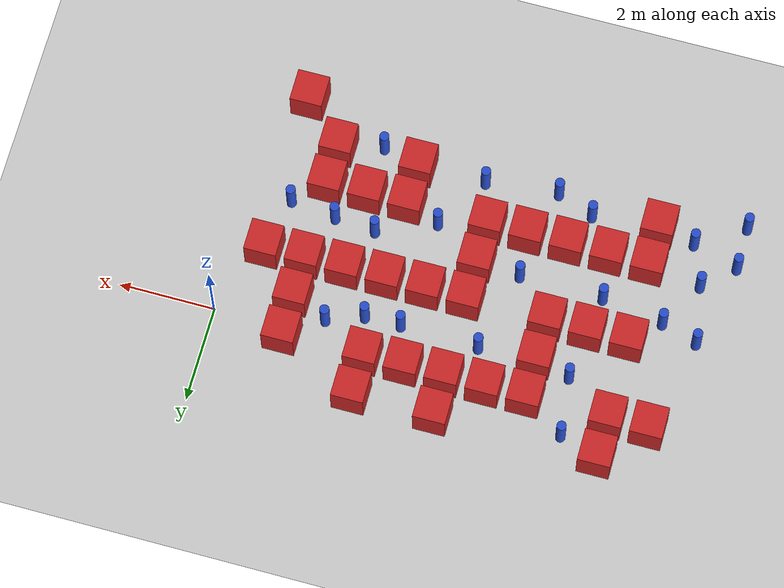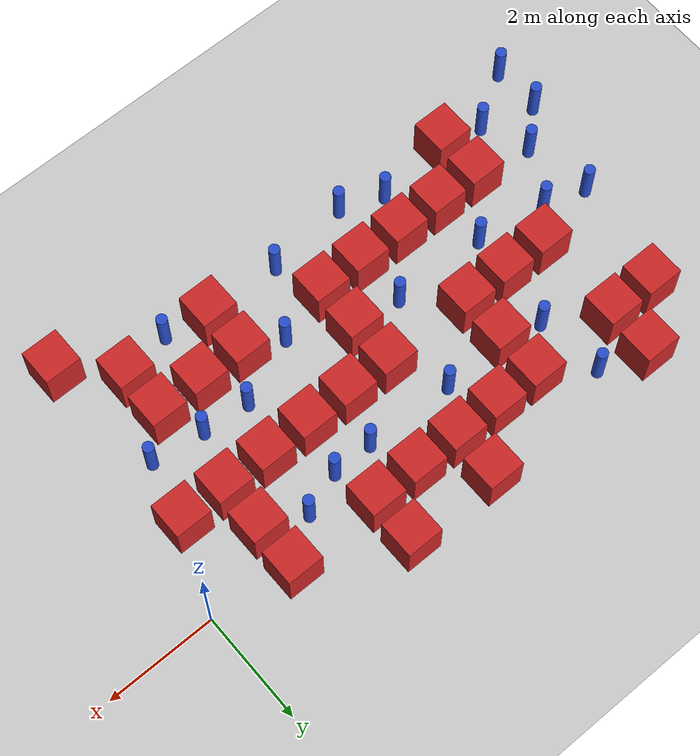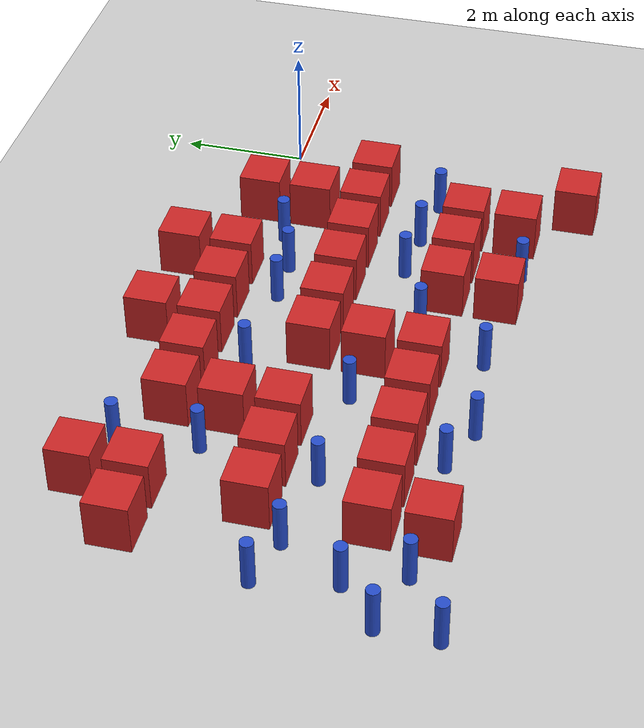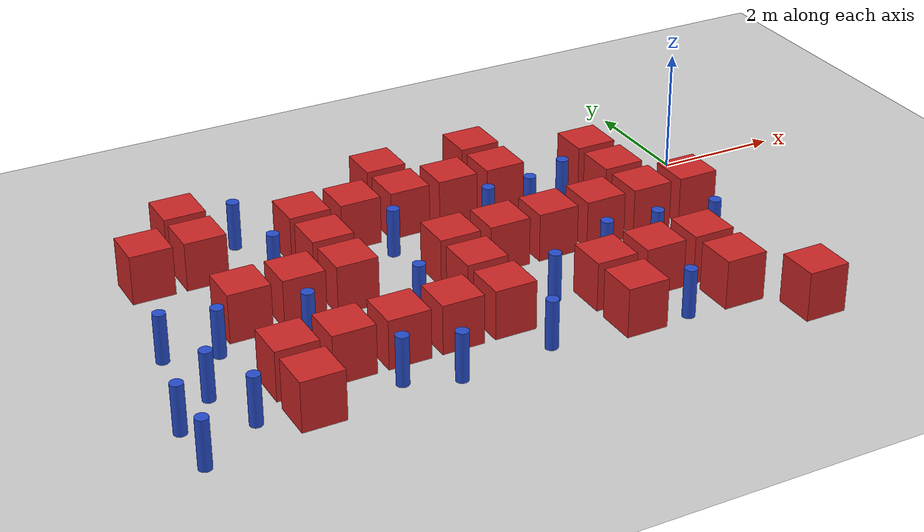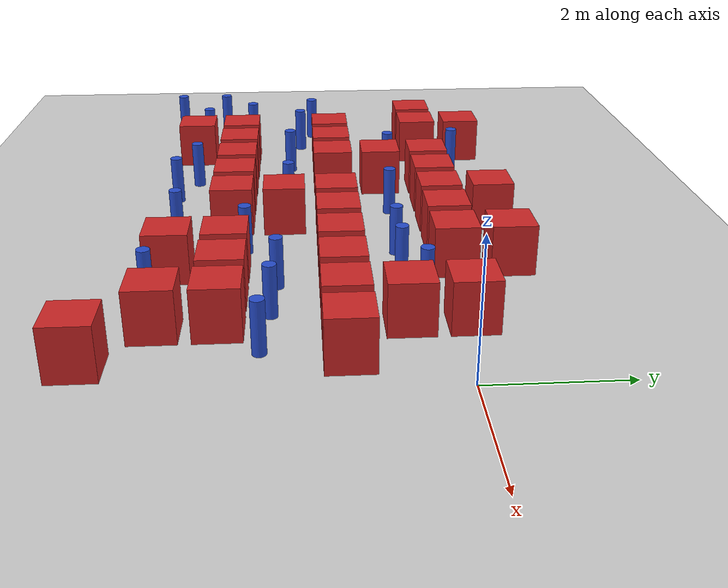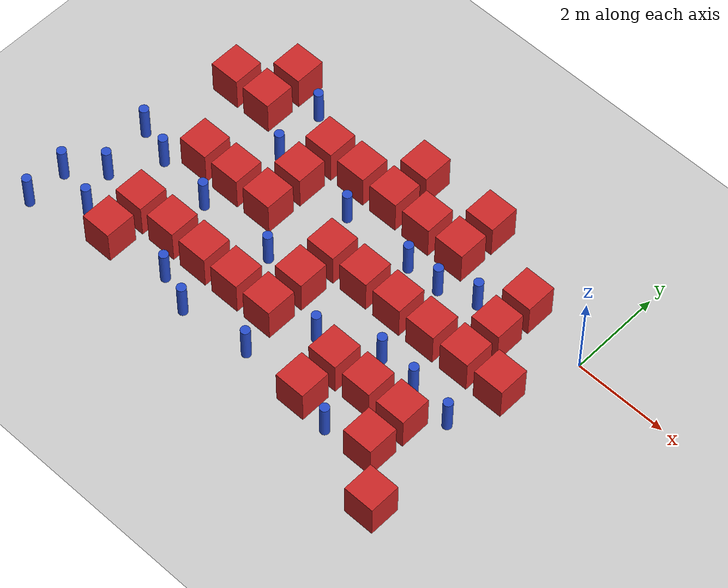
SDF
<sdf version="1.6">
 <world name="default">
  <model name="ground_plane">
   <static>1</static>
   <link name="link">
    <collision name="collision">
     <geometry><plane><normal>0 0 1</normal><size>100 100</size></plane></geometry>
     <surface><friction><ode><mu>100</mu><mu2>50</mu2></ode></friction></surface>
    </collision>
    <visual name="visual">
     <cast_shadows>0</cast_shadows>
     <geometry><plane><normal>0 0 1</normal><size>100 100</size></plane></geometry>
     <material>
      <script><uri>file://media/materials/scripts/gazebo.material</uri><name>Gazebo/Grey</name></script>
     </material>
    </visual>
   </link>
  </model>
  <model name="box_obstacle1">
   <static>0</static>
   <link name="link">
    <pose>0 0 0.1 0 -0 0</pose>
    <inertial>
     <mass>100</mass>
     <inertia>
      <ixx>0.166667</ixx>
      <ixy>0</ixy>
      <ixz>0</ixz>
      <iyy>0.166667</iyy>
      <iyz>0</iyz>
      <izz>0.166667</izz>
     </inertia>
    </inertial>
    <collision name="collision"><geometry><box><size>0.675 0.675 0.8</size></box></geometry></collision>
    <visual name="visual">
     <geometry><box><size>0.675 0.675 0.8</size></box></geometry>
     <material>
      <script><name>Gazebo/Red</name><uri>file://media/materials/scripts/gazebo.material</uri></script>
     </material>
    </visual>
   </link>
   <pose>-9.15097 0.19865 0.299996 4e-06 -0 0.001125</pose>
  </model>
  <model name="box_obstacle6">
   <static>0</static>
   <link name="link">
    <pose>0 0 0.1 0 -0 0</pose>
    <inertial>
     <mass>100</mass>
     <inertia>
      <ixx>0.166667</ixx>
      <ixy>0</ixy>
      <ixz>0</ixz>
      <iyy>0.166667</iyy>
      <iyz>0</iyz>
      <izz>0.166667</izz>
     </inertia>
    </inertial>
    <collision name="collision"><geometry><box><size>0.675 0.675 0.8</size></box></geometry></collision>
    <visual name="visual">
     <geometry><box><size>0.675 0.675 0.8</size></box></geometry>
     <material>
      <script><name>Gazebo/Red</name><uri>file://media/materials/scripts/gazebo.material</uri></script>
     </material>
    </visual>
   </link>
   <pose>-8.30097 -4.05135 0.299996 4e-06 -0 0.001125</pose>
  </model>
  <model name="box_obstacle7">
   <static>0</static>
   <link name="link">
    <pose>0 0 0.1 0 -0 0</pose>
    <inertial>
     <mass>100</mass>
     <inertia>
      <ixx>0.166667</ixx>
      <ixy>0</ixy>
      <ixz>0</ixz>
      <iyy>0.166667</iyy>
      <iyz>0</iyz>
      <izz>0.166667</izz>
     </inertia>
    </inertial>
    <collision name="collision"><geometry><box><size>0.675 0.675 0.8</size></box></geometry></collision>
    <visual name="visual">
     <geometry><box><size>0.675 0.675 0.8</size></box></geometry>
     <material>
      <script><name>Gazebo/Red</name><uri>file://media/materials/scripts/gazebo.material</uri></script>
     </material>
    </visual>
   </link>
   <pose>-8.30097 -3.20135 0.299996 4e-06 -0 0.001125</pose>
  </model>
  <model name="box_obstacle8">
   <static>0</static>
   <link name="link">
    <pose>0 0 0.1 0 -0 0</pose>
    <inertial>
     <mass>100</mass>
     <inertia>
      <ixx>0.166667</ixx>
      <ixy>0</ixy>
      <ixz>0</ixz>
      <iyy>0.166667</iyy>
      <iyz>0</iyz>
      <izz>0.166667</izz>
     </inertia>
    </inertial>
    <collision name="collision"><geometry><box><size>0.675 0.675 0.8</size></box></geometry></collision>
    <visual name="visual">
     <geometry><box><size>0.675 0.675 0.8</size></box></geometry>
     <material>
      <script><name>Gazebo/Red</name><uri>file://media/materials/scripts/gazebo.material</uri></script>
     </material>
    </visual>
   </link>
   <pose>-8.30097 -1.50135 0.299996 4e-06 -0 0.001125</pose>
  </model>
  <model name="box_obstacle9">
   <static>0</static>
   <link name="link">
    <pose>0 0 0.1 0 -0 0</pose>
    <inertial>
     <mass>100</mass>
     <inertia>
      <ixx>0.166667</ixx>
      <ixy>0</ixy>
      <ixz>0</ixz>
      <iyy>0.166667</iyy>
      <iyz>0</iyz>
      <izz>0.166667</izz>
     </inertia>
    </inertial>
    <collision name="collision"><geometry><box><size>0.675 0.675 0.8</size></box></geometry></collision>
    <visual name="visual">
     <geometry><box><size>0.675 0.675 0.8</size></box></geometry>
     <material>
      <script><name>Gazebo/Red</name><uri>file://media/materials/scripts/gazebo.material</uri></script>
     </material>
    </visual>
   </link>
   <pose>-8.30097 0.19865 0.299996 4e-06 -0 0.001125</pose>
  </model>
  <model name="box_obstacle10">
   <static>0</static>
   <link name="link">
    <pose>0 0 0.1 0 -0 0</pose>
    <inertial>
     <mass>100</mass>
     <inertia>
      <ixx>0.166667</ixx>
      <ixy>0</ixy>
      <ixz>0</ixz>
      <iyy>0.166667</iyy>
      <iyz>0</iyz>
      <izz>0.166667</izz>
     </inertia>
    </inertial>
    <collision name="collision"><geometry><box><size>0.675 0.675 0.8</size></box></geometry></collision>
    <visual name="visual">
     <geometry><box><size>0.675 0.675 0.8</size></box></geometry>
     <material>
      <script><name>Gazebo/Red</name><uri>file://media/materials/scripts/gazebo.material</uri></script>
     </material>
    </visual>
   </link>
   <pose>-8.30097 1.04865 0.299996 4e-06 -0 0.001125</pose>
  </model>
  <model name="box_obstacle20">
   <static>0</static>
   <link name="link">
    <pose>0 0 0.1 0 -0 0</pose>
    <inertial>
     <mass>100</mass>
     <inertia>
      <ixx>0.166667</ixx>
      <ixy>0</ixy>
      <ixz>0</ixz>
      <iyy>0.166667</iyy>
      <iyz>0</iyz>
      <izz>0.166667</izz>
     </inertia>
    </inertial>
    <collision name="collision"><geometry><box><size>0.675 0.675 0.8</size></box></geometry></collision>
    <visual name="visual">
     <geometry><box><size>0.675 0.675 0.8</size></box></geometry>
     <material>
      <script><name>Gazebo/Red</name><uri>file://media/materials/scripts/gazebo.material</uri></script>
     </material>
    </visual>
   </link>
   <pose>-7.45097 -3.20135 0.299996 4e-06 -0 0.001125</pose>
  </model>
  <model name="box_obstacle21">
   <static>0</static>
   <link name="link">
    <pose>0 0 0.1 0 -0 0</pose>
    <inertial>
     <mass>100</mass>
     <inertia>
      <ixx>0.166667</ixx>
      <ixy>0</ixy>
      <ixz>0</ixz>
      <iyy>0.166667</iyy>
      <iyz>0</iyz>
      <izz>0.166667</izz>
     </inertia>
    </inertial>
    <collision name="collision"><geometry><box><size>0.675 0.675 0.8</size></box></geometry></collision>
    <visual name="visual">
     <geometry><box><size>0.675 0.675 0.8</size></box></geometry>
     <material>
      <script><name>Gazebo/Red</name><uri>file://media/materials/scripts/gazebo.material</uri></script>
     </material>
    </visual>
   </link>
   <pose>-7.45097 -1.50135 0.299996 4e-06 -0 0.001125</pose>
  </model>
  <model name="box_obstacle29">
   <static>0</static>
   <link name="link">
    <pose>0 0 0.1 0 -0 0</pose>
    <inertial>
     <mass>100</mass>
     <inertia>
      <ixx>0.166667</ixx>
      <ixy>0</ixy>
      <ixz>0</ixz>
      <iyy>0.166667</iyy>
      <iyz>0</iyz>
      <izz>0.166667</izz>
     </inertia>
    </inertial>
    <collision name="collision"><geometry><box><size>0.675 0.675 0.8</size></box></geometry></collision>
    <visual name="visual">
     <geometry><box><size>0.675 0.675 0.8</size></box></geometry>
     <material>
      <script><name>Gazebo/Red</name><uri>file://media/materials/scripts/gazebo.material</uri></script>
     </material>
    </visual>
   </link>
   <pose>-6.60097 -3.20135 0.299996 4e-06 -0 0.001125</pose>
  </model>
  <model name="box_obstacle30">
   <static>0</static>
   <link name="link">
    <pose>0 0 0.1 0 -0 0</pose>
    <inertial>
     <mass>100</mass>
     <inertia>
      <ixx>0.166667</ixx>
      <ixy>0</ixy>
      <ixz>0</ixz>
      <iyy>0.166667</iyy>
      <iyz>0</iyz>
      <izz>0.166667</izz>
     </inertia>
    </inertial>
    <collision name="collision"><geometry><box><size>0.675 0.675 0.8</size></box></geometry></collision>
    <visual name="visual">
     <geometry><box><size>0.675 0.675 0.8</size></box></geometry>
     <material>
      <script><name>Gazebo/Red</name><uri>file://media/materials/scripts/gazebo.material</uri></script>
     </material>
    </visual>
   </link>
   <pose>-6.60097 -1.50135 0.299996 4e-06 -0 0.001125</pose>
  </model>
  <model name="box_obstacle31">
   <static>0</static>
   <link name="link">
    <pose>0 0 0.1 0 -0 0</pose>
    <inertial>
     <mass>100</mass>
     <inertia>
      <ixx>0.166667</ixx>
      <ixy>0</ixy>
      <ixz>0</ixz>
      <iyy>0.166667</iyy>
      <iyz>0</iyz>
      <izz>0.166667</izz>
     </inertia>
    </inertial>
    <collision name="collision"><geometry><box><size>0.675 0.675 0.8</size></box></geometry></collision>
    <visual name="visual">
     <geometry><box><size>0.675 0.675 0.8</size></box></geometry>
     <material>
      <script><name>Gazebo/Red</name><uri>file://media/materials/scripts/gazebo.material</uri></script>
     </material>
    </visual>
   </link>
   <pose>-6.60097 -0.65135 0.299996 4e-06 -0 0.001125</pose>
  </model>
  <model name="box_obstacle32">
   <static>0</static>
   <link name="link">
    <pose>0 0 0.1 0 -0 0</pose>
    <inertial>
     <mass>100</mass>
     <inertia>
      <ixx>0.166667</ixx>
      <ixy>0</ixy>
      <ixz>0</ixz>
      <iyy>0.166667</iyy>
      <iyz>0</iyz>
      <izz>0.166667</izz>
     </inertia>
    </inertial>
    <collision name="collision"><geometry><box><size>0.675 0.675 0.8</size></box></geometry></collision>
    <visual name="visual">
     <geometry><box><size>0.675 0.675 0.8</size></box></geometry>
     <material>
      <script><name>Gazebo/Red</name><uri>file://media/materials/scripts/gazebo.material</uri></script>
     </material>
    </visual>
   </link>
   <pose>-6.60097 0.19865 0.299996 4e-06 -0 0.001125</pose>
  </model>
  <model name="box_obstacle43">
   <static>0</static>
   <link name="link">
    <pose>0 0 0.1 0 -0 0</pose>
    <inertial>
     <mass>100</mass>
     <inertia>
      <ixx>0.166667</ixx>
      <ixy>0</ixy>
      <ixz>0</ixz>
      <iyy>0.166667</iyy>
      <iyz>0</iyz>
      <izz>0.166667</izz>
     </inertia>
    </inertial>
    <collision name="collision"><geometry><box><size>0.675 0.675 0.8</size></box></geometry></collision>
    <visual name="visual">
     <geometry><box><size>0.675 0.675 0.8</size></box></geometry>
     <material>
      <script><name>Gazebo/Red</name><uri>file://media/materials/scripts/gazebo.material</uri></script>
     </material>
    </visual>
   </link>
   <pose>-5.75097 -3.20135 0.299996 4e-06 -0 0.001125</pose>
  </model>
  <model name="box_obstacle44">
   <static>0</static>
   <link name="link">
    <pose>0 0 0.1 0 -0 0</pose>
    <inertial>
     <mass>100</mass>
     <inertia>
      <ixx>0.166667</ixx>
      <ixy>0</ixy>
      <ixz>0</ixz>
      <iyy>0.166667</iyy>
      <iyz>0</iyz>
      <izz>0.166667</izz>
     </inertia>
    </inertial>
    <collision name="collision"><geometry><box><size>0.675 0.675 0.8</size></box></geometry></collision>
    <visual name="visual">
     <geometry><box><size>0.675 0.675 0.8</size></box></geometry>
     <material>
      <script><name>Gazebo/Red</name><uri>file://media/materials/scripts/gazebo.material</uri></script>
     </material>
    </visual>
   </link>
   <pose>-5.75097 0.19865 0.299996 4e-06 -0 0.001125</pose>
  </model>
  <model name="box_obstacle49">
   <static>0</static>
   <link name="link">
    <pose>0 0 0.1 0 -0 0</pose>
    <inertial>
     <mass>100</mass>
     <inertia>
      <ixx>0.166667</ixx>
      <ixy>0</ixy>
      <ixz>0</ixz>
      <iyy>0.166667</iyy>
      <iyz>0</iyz>
      <izz>0.166667</izz>
     </inertia>
    </inertial>
    <collision name="collision"><geometry><box><size>0.675 0.675 0.8</size></box></geometry></collision>
    <visual name="visual">
     <geometry><box><size>0.675 0.675 0.8</size></box></geometry>
     <material>
      <script><name>Gazebo/Red</name><uri>file://media/materials/scripts/gazebo.material</uri></script>
     </material>
    </visual>
   </link>
   <pose>-4.90097 -3.20135 0.299996 4e-06 -0 0.001125</pose>
  </model>
  <model name="box_obstacle50">
   <static>0</static>
   <link name="link">
    <pose>0 0 0.1 0 -0 0</pose>
    <inertial>
     <mass>100</mass>
     <inertia>
      <ixx>0.166667</ixx>
      <ixy>0</ixy>
      <ixz>0</ixz>
      <iyy>0.166667</iyy>
      <iyz>0</iyz>
      <izz>0.166667</izz>
     </inertia>
    </inertial>
    <collision name="collision"><geometry><box><size>0.675 0.675 0.8</size></box></geometry></collision>
    <visual name="visual">
     <geometry><box><size>0.675 0.675 0.8</size></box></geometry>
     <material>
      <script><name>Gazebo/Red</name><uri>file://media/materials/scripts/gazebo.material</uri></script>
     </material>
    </visual>
   </link>
   <pose>-4.90097 -2.35135 0.299996 4e-06 -0 0.001125</pose>
  </model>
  <model name="box_obstacle51">
   <static>0</static>
   <link name="link">
    <pose>0 0 0.1 0 -0 0</pose>
    <inertial>
     <mass>100</mass>
     <inertia>
      <ixx>0.166667</ixx>
      <ixy>0</ixy>
      <ixz>0</ixz>
      <iyy>0.166667</iyy>
      <iyz>0</iyz>
      <izz>0.166667</izz>
     </inertia>
    </inertial>
    <collision name="collision"><geometry><box><size>0.675 0.675 0.8</size></box></geometry></collision>
    <visual name="visual">
     <geometry><box><size>0.675 0.675 0.8</size></box></geometry>
     <material>
      <script><name>Gazebo/Red</name><uri>file://media/materials/scripts/gazebo.material</uri></script>
     </material>
    </visual>
   </link>
   <pose>-4.90097 -1.50135 0.299996 4e-06 -0 0.001125</pose>
  </model>
  <model name="box_obstacle52">
   <static>0</static>
   <link name="link">
    <pose>0 0 0.1 0 -0 0</pose>
    <inertial>
     <mass>100</mass>
     <inertia>
      <ixx>0.166667</ixx>
      <ixy>0</ixy>
      <ixz>0</ixz>
      <iyy>0.166667</iyy>
      <iyz>0</iyz>
      <izz>0.166667</izz>
     </inertia>
    </inertial>
    <collision name="collision"><geometry><box><size>0.675 0.675 0.8</size></box></geometry></collision>
    <visual name="visual">
     <geometry><box><size>0.675 0.675 0.8</size></box></geometry>
     <material>
      <script><name>Gazebo/Red</name><uri>file://media/materials/scripts/gazebo.material</uri></script>
     </material>
    </visual>
   </link>
   <pose>-4.90097 0.19865 0.299996 4e-06 -0 0.001125</pose>
  </model>
  <model name="box_obstacle53">
   <static>0</static>
   <link name="link">
    <pose>0 0 0.1 0 -0 0</pose>
    <inertial>
     <mass>100</mass>
     <inertia>
      <ixx>0.166667</ixx>
      <ixy>0</ixy>
      <ixz>0</ixz>
      <iyy>0.166667</iyy>
      <iyz>0</iyz>
      <izz>0.166667</izz>
     </inertia>
    </inertial>
    <collision name="collision"><geometry><box><size>0.675 0.675 0.8</size></box></geometry></collision>
    <visual name="visual">
     <geometry><box><size>0.675 0.675 0.8</size></box></geometry>
     <material>
      <script><name>Gazebo/Red</name><uri>file://media/materials/scripts/gazebo.material</uri></script>
     </material>
    </visual>
   </link>
   <pose>-4.90097 1.04865 0.299996 4e-06 -0 0.001125</pose>
  </model>
  <model name="box_obstacle65">
   <static>0</static>
   <link name="link">
    <pose>0 0 0.1 0 -0 0</pose>
    <inertial>
     <mass>100</mass>
     <inertia>
      <ixx>0.166667</ixx>
      <ixy>0</ixy>
      <ixz>0</ixz>
      <iyy>0.166667</iyy>
      <iyz>0</iyz>
      <izz>0.166667</izz>
     </inertia>
    </inertial>
    <collision name="collision"><geometry><box><size>0.675 0.675 0.8</size></box></geometry></collision>
    <visual name="visual">
     <geometry><box><size>0.675 0.675 0.8</size></box></geometry>
     <material>
      <script><name>Gazebo/Red</name><uri>file://media/materials/scripts/gazebo.material</uri></script>
     </material>
    </visual>
   </link>
   <pose>-4.05097 -1.50135 0.299996 4e-06 -0 0.001125</pose>
  </model>
  <model name="box_obstacle66">
   <static>0</static>
   <link name="link">
    <pose>0 0 0.1 0 -0 0</pose>
    <inertial>
     <mass>100</mass>
     <inertia>
      <ixx>0.166667</ixx>
      <ixy>0</ixy>
      <ixz>0</ixz>
      <iyy>0.166667</iyy>
      <iyz>0</iyz>
      <izz>0.166667</izz>
     </inertia>
    </inertial>
    <collision name="collision"><geometry><box><size>0.675 0.675 0.8</size></box></geometry></collision>
    <visual name="visual">
     <geometry><box><size>0.675 0.675 0.8</size></box></geometry>
     <material>
      <script><name>Gazebo/Red</name><uri>file://media/materials/scripts/gazebo.material</uri></script>
     </material>
    </visual>
   </link>
   <pose>-4.05097 0.19865 0.299996 4e-06 -0 0.001125</pose>
  </model>
  <model name="box_obstacle73">
   <static>0</static>
   <link name="link">
    <pose>0 0 0.1 0 -0 0</pose>
    <inertial>
     <mass>100</mass>
     <inertia>
      <ixx>0.166667</ixx>
      <ixy>0</ixy>
      <ixz>0</ixz>
      <iyy>0.166667</iyy>
      <iyz>0</iyz>
      <izz>0.166667</izz>
     </inertia>
    </inertial>
    <collision name="collision"><geometry><box><size>0.675 0.675 0.8</size></box></geometry></collision>
    <visual name="visual">
     <geometry><box><size>0.675 0.675 0.8</size></box></geometry>
     <material>
      <script><name>Gazebo/Red</name><uri>file://media/materials/scripts/gazebo.material</uri></script>
     </material>
    </visual>
   </link>
   <pose>-3.20097 -4.05135 0.299996 4e-06 -0 0.001125</pose>
  </model>
  <model name="box_obstacle74">
   <static>0</static>
   <link name="link">
    <pose>0 0 0.1 0 -0 0</pose>
    <inertial>
     <mass>100</mass>
     <inertia>
      <ixx>0.166667</ixx>
      <ixy>0</ixy>
      <ixz>0</ixz>
      <iyy>0.166667</iyy>
      <iyz>0</iyz>
      <izz>0.166667</izz>
     </inertia>
    </inertial>
    <collision name="collision"><geometry><box><size>0.675 0.675 0.8</size></box></geometry></collision>
    <visual name="visual">
     <geometry><box><size>0.675 0.675 0.8</size></box></geometry>
     <material>
      <script><name>Gazebo/Red</name><uri>file://media/materials/scripts/gazebo.material</uri></script>
     </material>
    </visual>
   </link>
   <pose>-3.20097 -3.20135 0.299996 4e-06 -0 0.001125</pose>
  </model>
  <model name="box_obstacle75">
   <static>0</static>
   <link name="link">
    <pose>0 0 0.1 0 -0 0</pose>
    <inertial>
     <mass>100</mass>
     <inertia>
      <ixx>0.166667</ixx>
      <ixy>0</ixy>
      <ixz>0</ixz>
      <iyy>0.166667</iyy>
      <iyz>0</iyz>
      <izz>0.166667</izz>
     </inertia>
    </inertial>
    <collision name="collision"><geometry><box><size>0.675 0.675 0.8</size></box></geometry></collision>
    <visual name="visual">
     <geometry><box><size>0.675 0.675 0.8</size></box></geometry>
     <material>
      <script><name>Gazebo/Red</name><uri>file://media/materials/scripts/gazebo.material</uri></script>
     </material>
    </visual>
   </link>
   <pose>-3.20097 -1.50135 0.299996 4e-06 -0 0.001125</pose>
  </model>
  <model name="box_obstacle76">
   <static>0</static>
   <link name="link">
    <pose>0 0 0.1 0 -0 0</pose>
    <inertial>
     <mass>100</mass>
     <inertia>
      <ixx>0.166667</ixx>
      <ixy>0</ixy>
      <ixz>0</ixz>
      <iyy>0.166667</iyy>
      <iyz>0</iyz>
      <izz>0.166667</izz>
     </inertia>
    </inertial>
    <collision name="collision"><geometry><box><size>0.675 0.675 0.8</size></box></geometry></collision>
    <visual name="visual">
     <geometry><box><size>0.675 0.675 0.8</size></box></geometry>
     <material>
      <script><name>Gazebo/Red</name><uri>file://media/materials/scripts/gazebo.material</uri></script>
     </material>
    </visual>
   </link>
   <pose>-3.20097 0.19865 0.299996 4e-06 -0 0.001125</pose>
  </model>
  <model name="box_obstacle77">
   <static>0</static>
   <link name="link">
    <pose>0 0 0.1 0 -0 0</pose>
    <inertial>
     <mass>100</mass>
     <inertia>
      <ixx>0.166667</ixx>
      <ixy>0</ixy>
      <ixz>0</ixz>
      <iyy>0.166667</iyy>
      <iyz>0</iyz>
      <izz>0.166667</izz>
     </inertia>
    </inertial>
    <collision name="collision"><geometry><box><size>0.675 0.675 0.8</size></box></geometry></collision>
    <visual name="visual">
     <geometry><box><size>0.675 0.675 0.8</size></box></geometry>
     <material>
      <script><name>Gazebo/Red</name><uri>file://media/materials/scripts/gazebo.material</uri></script>
     </material>
    </visual>
   </link>
   <pose>-3.20097 1.04865 0.299996 4e-06 -0 0.001125</pose>
  </model>
  <model name="box_obstacle86">
   <static>0</static>
   <link name="link">
    <pose>0 0 0.1 0 -0 0</pose>
    <inertial>
     <mass>100</mass>
     <inertia>
      <ixx>0.166667</ixx>
      <ixy>0</ixy>
      <ixz>0</ixz>
      <iyy>0.166667</iyy>
      <iyz>0</iyz>
      <izz>0.166667</izz>
     </inertia>
    </inertial>
    <collision name="collision"><geometry><box><size>0.675 0.675 0.8</size></box></geometry></collision>
    <visual name="visual">
     <geometry><box><size>0.675 0.675 0.8</size></box></geometry>
     <material>
      <script><name>Gazebo/Red</name><uri>file://media/materials/scripts/gazebo.material</uri></script>
     </material>
    </visual>
   </link>
   <pose>-2.35097 -3.20135 0.299996 4e-06 -0 0.001125</pose>
  </model>
  <model name="box_obstacle87">
   <static>0</static>
   <link name="link">
    <pose>0 0 0.1 0 -0 0</pose>
    <inertial>
     <mass>100</mass>
     <inertia>
      <ixx>0.166667</ixx>
      <ixy>0</ixy>
      <ixz>0</ixz>
      <iyy>0.166667</iyy>
      <iyz>0</iyz>
      <izz>0.166667</izz>
     </inertia>
    </inertial>
    <collision name="collision"><geometry><box><size>0.675 0.675 0.8</size></box></geometry></collision>
    <visual name="visual">
     <geometry><box><size>0.675 0.675 0.8</size></box></geometry>
     <material>
      <script><name>Gazebo/Red</name><uri>file://media/materials/scripts/gazebo.material</uri></script>
     </material>
    </visual>
   </link>
   <pose>-2.35097 -1.50135 0.299996 4e-06 -0 0.001125</pose>
  </model>
  <model name="box_obstacle94">
   <static>0</static>
   <link name="link">
    <pose>0 0 0.1 0 -0 0</pose>
    <inertial>
     <mass>100</mass>
     <inertia>
      <ixx>0.166667</ixx>
      <ixy>0</ixy>
      <ixz>0</ixz>
      <iyy>0.166667</iyy>
      <iyz>0</iyz>
      <izz>0.166667</izz>
     </inertia>
    </inertial>
    <collision name="collision"><geometry><box><size>0.675 0.675 0.8</size></box></geometry></collision>
    <visual name="visual">
     <geometry><box><size>0.675 0.675 0.8</size></box></geometry>
     <material>
      <script><name>Gazebo/Red</name><uri>file://media/materials/scripts/gazebo.material</uri></script>
     </material>
    </visual>
   </link>
   <pose>-1.50097 -4.05135 0.299996 4e-06 -0 0.001125</pose>
  </model>
  <model name="box_obstacle95">
   <static>0</static>
   <link name="link">
    <pose>0 0 0.1 0 -0 0</pose>
    <inertial>
     <mass>100</mass>
     <inertia>
      <ixx>0.166667</ixx>
      <ixy>0</ixy>
      <ixz>0</ixz>
      <iyy>0.166667</iyy>
      <iyz>0</iyz>
      <izz>0.166667</izz>
     </inertia>
    </inertial>
    <collision name="collision"><geometry><box><size>0.675 0.675 0.8</size></box></geometry></collision>
    <visual name="visual">
     <geometry><box><size>0.675 0.675 0.8</size></box></geometry>
     <material>
      <script><name>Gazebo/Red</name><uri>file://media/materials/scripts/gazebo.material</uri></script>
     </material>
    </visual>
   </link>
   <pose>-1.50097 -3.20135 0.299996 4e-06 -0 0.001125</pose>
  </model>
  <model name="box_obstacle96">
   <static>0</static>
   <link name="link">
    <pose>0 0 0.1 0 -0 0</pose>
    <inertial>
     <mass>100</mass>
     <inertia>
      <ixx>0.166667</ixx>
      <ixy>0</ixy>
      <ixz>0</ixz>
      <iyy>0.166667</iyy>
      <iyz>0</iyz>
      <izz>0.166667</izz>
     </inertia>
    </inertial>
    <collision name="collision"><geometry><box><size>0.675 0.675 0.8</size></box></geometry></collision>
    <visual name="visual">
     <geometry><box><size>0.675 0.675 0.8</size></box></geometry>
     <material>
      <script><name>Gazebo/Red</name><uri>file://media/materials/scripts/gazebo.material</uri></script>
     </material>
    </visual>
   </link>
   <pose>-1.50097 -1.50135 0.299996 4e-06 -0 0.001125</pose>
  </model>
  <model name="box_obstacle97">
   <static>0</static>
   <link name="link">
    <pose>0 0 0.1 0 -0 0</pose>
    <inertial>
     <mass>100</mass>
     <inertia>
      <ixx>0.166667</ixx>
      <ixy>0</ixy>
      <ixz>0</ixz>
      <iyy>0.166667</iyy>
      <iyz>0</iyz>
      <izz>0.166667</izz>
     </inertia>
    </inertial>
    <collision name="collision"><geometry><box><size>0.675 0.675 0.8</size></box></geometry></collision>
    <visual name="visual">
     <geometry><box><size>0.675 0.675 0.8</size></box></geometry>
     <material>
      <script><name>Gazebo/Red</name><uri>file://media/materials/scripts/gazebo.material</uri></script>
     </material>
    </visual>
   </link>
   <pose>-1.50097 -0.65135 0.299996 4e-06 -0 0.001125</pose>
  </model>
  <model name="box_obstacle98">
   <static>0</static>
   <link name="link">
    <pose>0 0 0.1 0 -0 0</pose>
    <inertial>
     <mass>100</mass>
     <inertia>
      <ixx>0.166667</ixx>
      <ixy>0</ixy>
      <ixz>0</ixz>
      <iyy>0.166667</iyy>
      <iyz>0</iyz>
      <izz>0.166667</izz>
     </inertia>
    </inertial>
    <collision name="collision"><geometry><box><size>0.675 0.675 0.8</size></box></geometry></collision>
    <visual name="visual">
     <geometry><box><size>0.675 0.675 0.8</size></box></geometry>
     <material>
      <script><name>Gazebo/Red</name><uri>file://media/materials/scripts/gazebo.material</uri></script>
     </material>
    </visual>
   </link>
   <pose>-1.50097 0.19865 0.299996 4e-06 -0 0.001125</pose>
  </model>
  <model name="box_obstacle107">
   <static>0</static>
   <link name="link">
    <pose>0 0 0.1 0 -0 0</pose>
    <inertial>
     <mass>100</mass>
     <inertia>
      <ixx>0.166667</ixx>
      <ixy>0</ixy>
      <ixz>0</ixz>
      <iyy>0.166667</iyy>
      <iyz>0</iyz>
      <izz>0.166667</izz>
     </inertia>
    </inertial>
    <collision name="collision"><geometry><box><size>0.675 0.675 0.8</size></box></geometry></collision>
    <visual name="visual">
     <geometry><box><size>0.675 0.675 0.8</size></box></geometry>
     <material>
      <script><name>Gazebo/Red</name><uri>file://media/materials/scripts/gazebo.material</uri></script>
     </material>
    </visual>
   </link>
   <pose>-0.65097 -4.90135 0.299996 4e-06 -0 0.001125</pose>
  </model>
  <model name="box_obstacle108">
   <static>0</static>
   <link name="link">
    <pose>0 0 0.1 0 -0 0</pose>
    <inertial>
     <mass>100</mass>
     <inertia>
      <ixx>0.166667</ixx>
      <ixy>0</ixy>
      <ixz>0</ixz>
      <iyy>0.166667</iyy>
      <iyz>0</iyz>
      <izz>0.166667</izz>
     </inertia>
    </inertial>
    <collision name="collision"><geometry><box><size>0.675 0.675 0.8</size></box></geometry></collision>
    <visual name="visual">
     <geometry><box><size>0.675 0.675 0.8</size></box></geometry>
     <material>
      <script><name>Gazebo/Red</name><uri>file://media/materials/scripts/gazebo.material</uri></script>
     </material>
    </visual>
   </link>
   <pose>-0.65097 -1.50135 0.299996 4e-06 -0 0.001125</pose>
  </model>
  <model name="cylinder_obstacle4">
   <static>0</static>
   <link name="link">
    <pose>0 0 1 0 -0 0</pose>
    <inertial>
     <mass>100</mass>
     <inertia>
      <ixx>0.166667</ixx>
      <ixy>0</ixy>
      <ixz>0</ixz>
      <iyy>0.166667</iyy>
      <iyz>0</iyz>
      <izz>0.166667</izz>
     </inertia>
    </inertial>
    <collision name="collision">
     <geometry><cylinder><radius>0.1</radius><length>0.8</length></cylinder></geometry>
    </collision>
    <visual name="visual">
     <geometry><cylinder><radius>0.1</radius><length>0.8</length></cylinder></geometry>
     <material>
      <script><name>Gazebo/Blue</name><uri>file://media/materials/scripts/gazebo.material</uri></script>
     </material>
    </visual>
   </link>
   <pose>-4.62511 -4.08423 -0.6 3e-06 1e-06 0.003884</pose>
  </model>
  <model name="cylinder_obstacle6">
   <static>0</static>
   <link name="link">
    <pose>0 0 1 0 -0 0</pose>
    <inertial>
     <mass>100</mass>
     <inertia>
      <ixx>0.166667</ixx>
      <ixy>0</ixy>
      <ixz>0</ixz>
      <iyy>0.166667</iyy>
      <iyz>0</iyz>
      <izz>0.166667</izz>
     </inertia>
    </inertial>
    <collision name="collision">
     <geometry><cylinder><radius>0.1</radius><length>0.8</length></cylinder></geometry>
    </collision>
    <visual name="visual">
     <geometry><cylinder><radius>0.1</radius><length>0.8</length></cylinder></geometry>
     <material>
      <script><name>Gazebo/Blue</name><uri>file://media/materials/scripts/gazebo.material</uri></script>
     </material>
    </visual>
   </link>
   <pose>-3.77168 -0.618054 -0.6 3e-06 1e-06 0.003884</pose>
  </model>
  <model name="cylinder_obstacle8">
   <static>0</static>
   <link name="link">
    <pose>0 0 1 0 -0 0</pose>
    <inertial>
     <mass>100</mass>
     <inertia>
      <ixx>0.166667</ixx>
      <ixy>0</ixy>
      <ixz>0</ixz>
      <iyy>0.166667</iyy>
      <iyz>0</iyz>
      <izz>0.166667</izz>
     </inertia>
    </inertial>
    <collision name="collision">
     <geometry><cylinder><radius>0.1</radius><length>0.8</length></cylinder></geometry>
    </collision>
    <visual name="visual">
     <geometry><cylinder><radius>0.1</radius><length>0.8</length></cylinder></geometry>
     <material>
      <script><name>Gazebo/Blue</name><uri>file://media/materials/scripts/gazebo.material</uri></script>
     </material>
    </visual>
   </link>
   <pose>-2.41603 -4.27344 -0.6 3e-06 1e-06 0.003884</pose>
  </model>
  <model name="cylinder_obstacle15">
   <static>0</static>
   <link name="link">
    <pose>0 0 1 0 -0 0</pose>
    <inertial>
     <mass>100</mass>
     <inertia>
      <ixx>0.166667</ixx>
      <ixy>0</ixy>
      <ixz>0</ixz>
      <iyy>0.166667</iyy>
      <iyz>0</iyz>
      <izz>0.166667</izz>
     </inertia>
    </inertial>
    <collision name="collision">
     <geometry><cylinder><radius>0.1</radius><length>0.8</length></cylinder></geometry>
    </collision>
    <visual name="visual">
     <geometry><cylinder><radius>0.1</radius><length>0.8</length></cylinder></geometry>
     <material>
      <script><name>Gazebo/Blue</name><uri>file://media/materials/scripts/gazebo.material</uri></script>
     </material>
    </visual>
   </link>
   <pose>-5.40874 -0.572014 -0.6 3e-06 1e-06 0.003884</pose>
  </model>
  <model name="cylinder_obstacle16">
   <static>0</static>
   <link name="link">
    <pose>0 0 1 0 -0 0</pose>
    <inertial>
     <mass>100</mass>
     <inertia>
      <ixx>0.166667</ixx>
      <ixy>0</ixy>
      <ixz>0</ixz>
      <iyy>0.166667</iyy>
      <iyz>0</iyz>
      <izz>0.166667</izz>
     </inertia>
    </inertial>
    <collision name="collision">
     <geometry><cylinder><radius>0.1</radius><length>0.8</length></cylinder></geometry>
    </collision>
    <visual name="visual">
     <geometry><cylinder><radius>0.1</radius><length>0.8</length></cylinder></geometry>
     <material>
      <script><name>Gazebo/Blue</name><uri>file://media/materials/scripts/gazebo.material</uri></script>
     </material>
    </visual>
   </link>
   <pose>-3.91743 -2.94707 -0.6 3e-06 1e-06 0.003884</pose>
  </model>
  <model name="cylinder_obstacle21">
   <static>0</static>
   <link name="link">
    <pose>0 0 1 0 -0 0</pose>
    <inertial>
     <mass>100</mass>
     <inertia>
      <ixx>0.166667</ixx>
      <ixy>0</ixy>
      <ixz>0</ixz>
      <iyy>0.166667</iyy>
      <iyz>0</iyz>
      <izz>0.166667</izz>
     </inertia>
    </inertial>
    <collision name="collision">
     <geometry><cylinder><radius>0.1</radius><length>0.8</length></cylinder></geometry>
    </collision>
    <visual name="visual">
     <geometry><cylinder><radius>0.1</radius><length>0.8</length></cylinder></geometry>
     <material>
      <script><name>Gazebo/Blue</name><uri>file://media/materials/scripts/gazebo.material</uri></script>
     </material>
    </visual>
   </link>
   <pose>-9.64719 -1.82605 -0.6 3e-06 1e-06 0.003884</pose>
  </model>
  <model name="cylinder_obstacle23">
   <static>0</static>
   <link name="link">
    <pose>0 0 1 0 -0 0</pose>
    <inertial>
     <mass>100</mass>
     <inertia>
      <ixx>0.166667</ixx>
      <ixy>0</ixy>
      <ixz>0</ixz>
      <iyy>0.166667</iyy>
      <iyz>0</iyz>
      <izz>0.166667</izz>
     </inertia>
    </inertial>
    <collision name="collision">
     <geometry><cylinder><radius>0.1</radius><length>0.8</length></cylinder></geometry>
    </collision>
    <visual name="visual">
     <geometry><cylinder><radius>0.1</radius><length>0.8</length></cylinder></geometry>
     <material>
      <script><name>Gazebo/Blue</name><uri>file://media/materials/scripts/gazebo.material</uri></script>
     </material>
    </visual>
   </link>
   <pose>-10.0581 -4.52301 -0.6 3e-06 1e-06 0.00953</pose>
  </model>
  <model name="cylinder_obstacle28">
   <static>0</static>
   <link name="link">
    <pose>0 0 1 0 -0 0</pose>
    <inertial>
     <mass>100</mass>
     <inertia>
      <ixx>0.166667</ixx>
      <ixy>0</ixy>
      <ixz>0</ixz>
      <iyy>0.166667</iyy>
      <iyz>0</iyz>
      <izz>0.166667</izz>
     </inertia>
    </inertial>
    <collision name="collision">
     <geometry><cylinder><radius>0.1</radius><length>0.8</length></cylinder></geometry>
    </collision>
    <visual name="visual">
     <geometry><cylinder><radius>0.1</radius><length>0.8</length></cylinder></geometry>
     <material>
      <script><name>Gazebo/Blue</name><uri>file://media/materials/scripts/gazebo.material</uri></script>
     </material>
    </visual>
   </link>
   <pose>-8.87937 -2.06453 -0.6 3e-06 1e-06 0.003884</pose>
  </model>
  <model name="cylinder_obstacle33">
   <static>0</static>
   <link name="link">
    <pose>0 0 1 0 -0 0</pose>
    <inertial>
     <mass>100</mass>
     <inertia>
      <ixx>0.166667</ixx>
      <ixy>0</ixy>
      <ixz>0</ixz>
      <iyy>0.166667</iyy>
      <iyz>0</iyz>
      <izz>0.166667</izz>
     </inertia>
    </inertial>
    <collision name="collision">
     <geometry><cylinder><radius>0.1</radius><length>0.8</length></cylinder></geometry>
    </collision>
    <visual name="visual">
     <geometry><cylinder><radius>0.1</radius><length>0.8</length></cylinder></geometry>
     <material>
      <script><name>Gazebo/Blue</name><uri>file://media/materials/scripts/gazebo.material</uri></script>
     </material>
    </visual>
   </link>
   <pose>-2.71658 -2.4476 -0.6 3e-06 1e-06 0.003884</pose>
  </model>
  <model name="cylinder_obstacle44">
   <static>0</static>
   <link name="link">
    <pose>0 0 1 0 -0 0</pose>
    <inertial>
     <mass>100</mass>
     <inertia>
      <ixx>0.166667</ixx>
      <ixy>0</ixy>
      <ixz>0</ixz>
      <iyy>0.166667</iyy>
      <iyz>0</iyz>
      <izz>0.166667</izz>
     </inertia>
    </inertial>
    <collision name="collision">
     <geometry><cylinder><radius>0.1</radius><length>0.8</length></cylinder></geometry>
    </collision>
    <visual name="visual">
     <geometry><cylinder><radius>0.1</radius><length>0.8</length></cylinder></geometry>
     <material>
      <script><name>Gazebo/Blue</name><uri>file://media/materials/scripts/gazebo.material</uri></script>
     </material>
    </visual>
   </link>
   <pose>-7.49208 0.791874 -0.6 3e-06 1e-06 0.003884</pose>
  </model>
  <model name="cylinder_obstacle49">
   <static>0</static>
   <link name="link">
    <pose>0 0 1 0 -0 0</pose>
    <inertial>
     <mass>100</mass>
     <inertia>
      <ixx>0.166667</ixx>
      <ixy>0</ixy>
      <ixz>0</ixz>
      <iyy>0.166667</iyy>
      <iyz>0</iyz>
      <izz>0.166667</izz>
     </inertia>
    </inertial>
    <collision name="collision">
     <geometry><cylinder><radius>0.1</radius><length>0.8</length></cylinder></geometry>
    </collision>
    <visual name="visual">
     <geometry><cylinder><radius>0.1</radius><length>0.8</length></cylinder></geometry>
     <material>
      <script><name>Gazebo/Blue</name><uri>file://media/materials/scripts/gazebo.material</uri></script>
     </material>
    </visual>
   </link>
   <pose>-5.82724 -2.28805 -0.6 3e-06 1e-06 0.003884</pose>
  </model>
  <model name="cylinder_obstacle58">
   <static>0</static>
   <link name="link">
    <pose>0 0 1 0 -0 0</pose>
    <inertial>
     <mass>100</mass>
     <inertia>
      <ixx>0.166667</ixx>
      <ixy>0</ixy>
      <ixz>0</ixz>
      <iyy>0.166667</iyy>
      <iyz>0</iyz>
      <izz>0.166667</izz>
     </inertia>
    </inertial>
    <collision name="collision">
     <geometry><cylinder><radius>0.1</radius><length>0.8</length></cylinder></geometry>
    </collision>
    <visual name="visual">
     <geometry><cylinder><radius>0.1</radius><length>0.8</length></cylinder></geometry>
     <material>
      <script><name>Gazebo/Blue</name><uri>file://media/materials/scripts/gazebo.material</uri></script>
     </material>
    </visual>
   </link>
   <pose>-9.08672 -3.89938 -0.6 3e-06 1e-06 0.003884</pose>
  </model>
  <model name="cylinder_obstacle59">
   <static>0</static>
   <link name="link">
    <pose>0 0 1 0 -0 0</pose>
    <inertial>
     <mass>100</mass>
     <inertia>
      <ixx>0.166667</ixx>
      <ixy>0</ixy>
      <ixz>0</ixz>
      <iyy>0.166667</iyy>
      <iyz>0</iyz>
      <izz>0.166667</izz>
     </inertia>
    </inertial>
    <collision name="collision">
     <geometry><cylinder><radius>0.1</radius><length>0.8</length></cylinder></geometry>
    </collision>
    <visual name="visual">
     <geometry><cylinder><radius>0.1</radius><length>0.8</length></cylinder></geometry>
     <material>
      <script><name>Gazebo/Blue</name><uri>file://media/materials/scripts/gazebo.material</uri></script>
     </material>
    </visual>
   </link>
   <pose>-7.3454 -0.439325 -0.6 3e-06 1e-06 0.003884</pose>
  </model>
  <model name="cylinder_obstacle60">
   <static>0</static>
   <link name="link">
    <pose>0 0 1 0 -0 0</pose>
    <inertial>
     <mass>100</mass>
     <inertia>
      <ixx>0.166667</ixx>
      <ixy>0</ixy>
      <ixz>0</ixz>
      <iyy>0.166667</iyy>
      <iyz>0</iyz>
      <izz>0.166667</izz>
     </inertia>
    </inertial>
    <collision name="collision">
     <geometry><cylinder><radius>0.1</radius><length>0.8</length></cylinder></geometry>
    </collision>
    <visual name="visual">
     <geometry><cylinder><radius>0.1</radius><length>0.8</length></cylinder></geometry>
     <material>
      <script><name>Gazebo/Blue</name><uri>file://media/materials/scripts/gazebo.material</uri></script>
     </material>
    </visual>
   </link>
   <pose>-10.058 -3.61761 -0.6 3e-06 1e-06 0.005967</pose>
  </model>
  <model name="cylinder_obstacle62">
   <static>0</static>
   <link name="link">
    <pose>0 0 1 0 -0 0</pose>
    <inertial>
     <mass>100</mass>
     <inertia>
      <ixx>0.166667</ixx>
      <ixy>0</ixy>
      <ixz>0</ixz>
      <iyy>0.166667</iyy>
      <iyz>0</iyz>
      <izz>0.166667</izz>
     </inertia>
    </inertial>
    <collision name="collision">
     <geometry><cylinder><radius>0.1</radius><length>0.8</length></cylinder></geometry>
    </collision>
    <visual name="visual">
     <geometry><cylinder><radius>0.1</radius><length>0.8</length></cylinder></geometry>
     <material>
      <script><name>Gazebo/Blue</name><uri>file://media/materials/scripts/gazebo.material</uri></script>
     </material>
    </visual>
   </link>
   <pose>-2.25987 -0.32844 -0.6 3e-06 1e-06 0.003884</pose>
  </model>
  <model name="cylinder_obstacle64">
   <static>0</static>
   <link name="link">
    <pose>0 0 1 0 -0 0</pose>
    <inertial>
     <mass>100</mass>
     <inertia>
      <ixx>0.166667</ixx>
      <ixy>0</ixy>
      <ixz>0</ixz>
      <iyy>0.166667</iyy>
      <iyz>0</iyz>
      <izz>0.166667</izz>
     </inertia>
    </inertial>
    <collision name="collision">
     <geometry><cylinder><radius>0.1</radius><length>0.8</length></cylinder></geometry>
    </collision>
    <visual name="visual">
     <geometry><cylinder><radius>0.1</radius><length>0.8</length></cylinder></geometry>
     <material>
      <script><name>Gazebo/Blue</name><uri>file://media/materials/scripts/gazebo.material</uri></script>
     </material>
    </visual>
   </link>
   <pose>-7.58114 -2.2608 -0.6 3e-06 1e-06 0.003884</pose>
  </model>
  <model name="cylinder_obstacle66">
   <static>0</static>
   <link name="link">
    <pose>0 0 1 0 -0 0</pose>
    <inertial>
     <mass>100</mass>
     <inertia>
      <ixx>0.166667</ixx>
      <ixy>0</ixy>
      <ixz>0</ixz>
      <iyy>0.166667</iyy>
      <iyz>0</iyz>
      <izz>0.166667</izz>
     </inertia>
    </inertial>
    <collision name="collision">
     <geometry><cylinder><radius>0.1</radius><length>0.8</length></cylinder></geometry>
    </collision>
    <visual name="visual">
     <geometry><cylinder><radius>0.1</radius><length>0.8</length></cylinder></geometry>
     <material>
      <script><name>Gazebo/Blue</name><uri>file://media/materials/scripts/gazebo.material</uri></script>
     </material>
    </visual>
   </link>
   <pose>-1.85298 -2.52045 -0.6 3e-06 1e-06 0.003884</pose>
  </model>
  <model name="cylinder_obstacle71">
   <static>0</static>
   <link name="link">
    <pose>0 0 1 0 -0 0</pose>
    <inertial>
     <mass>100</mass>
     <inertia>
      <ixx>0.166667</ixx>
      <ixy>0</ixy>
      <ixz>0</ixz>
      <iyy>0.166667</iyy>
      <iyz>0</iyz>
      <izz>0.166667</izz>
     </inertia>
    </inertial>
    <collision name="collision">
     <geometry><cylinder><radius>0.1</radius><length>0.8</length></cylinder></geometry>
    </collision>
    <visual name="visual">
     <geometry><cylinder><radius>0.1</radius><length>0.8</length></cylinder></geometry>
     <material>
      <script><name>Gazebo/Blue</name><uri>file://media/materials/scripts/gazebo.material</uri></script>
     </material>
    </visual>
   </link>
   <pose>-0.885893 -2.6469 -0.6 3e-06 1e-06 0.003884</pose>
  </model>
  <model name="cylinder_obstacle73">
   <static>0</static>
   <link name="link">
    <pose>0 0 1 0 -0 0</pose>
    <inertial>
     <mass>100</mass>
     <inertia>
      <ixx>0.166667</ixx>
      <ixy>0</ixy>
      <ixz>0</ixz>
      <iyy>0.166667</iyy>
      <iyz>0</iyz>
      <izz>0.166667</izz>
     </inertia>
    </inertial>
    <collision name="collision">
     <geometry><cylinder><radius>0.1</radius><length>0.8</length></cylinder></geometry>
    </collision>
    <visual name="visual">
     <geometry><cylinder><radius>0.1</radius><length>0.8</length></cylinder></geometry>
     <material>
      <script><name>Gazebo/Blue</name><uri>file://media/materials/scripts/gazebo.material</uri></script>
     </material>
    </visual>
   </link>
   <pose>-3.01854 -0.606921 -0.6 3e-06 1e-06 0.003884</pose>
  </model>
  <model name="cylinder_obstacle78">
   <static>0</static>
   <link name="link">
    <pose>0 0 1 0 -0 0</pose>
    <inertial>
     <mass>100</mass>
     <inertia>
      <ixx>0.166667</ixx>
      <ixy>0</ixy>
      <ixz>0</ixz>
      <iyy>0.166667</iyy>
      <iyz>0</iyz>
      <izz>0.166667</izz>
     </inertia>
    </inertial>
    <collision name="collision">
     <geometry><cylinder><radius>0.1</radius><length>0.8</length></cylinder></geometry>
    </collision>
    <visual name="visual">
     <geometry><cylinder><radius>0.1</radius><length>0.8</length></cylinder></geometry>
     <material>
      <script><name>Gazebo/Blue</name><uri>file://media/materials/scripts/gazebo.material</uri></script>
     </material>
    </visual>
   </link>
   <pose>-6.146 -4.23752 -0.6 3e-06 1e-06 0.003884</pose>
  </model>
  <model name="cylinder_obstacle82">
   <static>0</static>
   <link name="link">
    <pose>0 0 1 0 -0 0</pose>
    <inertial>
     <mass>100</mass>
     <inertia>
      <ixx>0.166667</ixx>
      <ixy>0</ixy>
      <ixz>0</ixz>
      <iyy>0.166667</iyy>
      <iyz>0</iyz>
      <izz>0.166667</izz>
     </inertia>
    </inertial>
    <collision name="collision">
     <geometry><cylinder><radius>0.1</radius><length>0.8</length></cylinder></geometry>
    </collision>
    <visual name="visual">
     <geometry><cylinder><radius>0.1</radius><length>0.8</length></cylinder></geometry>
     <material>
      <script><name>Gazebo/Blue</name><uri>file://media/materials/scripts/gazebo.material</uri></script>
     </material>
    </visual>
   </link>
   <pose>-6.92057 -3.9438 -0.6 3e-06 1e-06 0.003884</pose>
  </model>
  <model name="cylinder_obstacle84">
   <static>0</static>
   <link name="link">
    <pose>0 0 1 0 -0 0</pose>
    <inertial>
     <mass>100</mass>
     <inertia>
      <ixx>0.166667</ixx>
      <ixy>0</ixy>
      <ixz>0</ixz>
      <iyy>0.166667</iyy>
      <iyz>0</iyz>
      <izz>0.166667</izz>
     </inertia>
    </inertial>
    <collision name="collision">
     <geometry><cylinder><radius>0.1</radius><length>0.8</length></cylinder></geometry>
    </collision>
    <visual name="visual">
     <geometry><cylinder><radius>0.1</radius><length>0.8</length></cylinder></geometry>
     <material>
      <script><name>Gazebo/Blue</name><uri>file://media/materials/scripts/gazebo.material</uri></script>
     </material>
    </visual>
   </link>
   <pose>-9.42723 -3.03829 -0.6 3e-06 1e-06 0.003884</pose>
  </model>
 </world>
</sdf>
